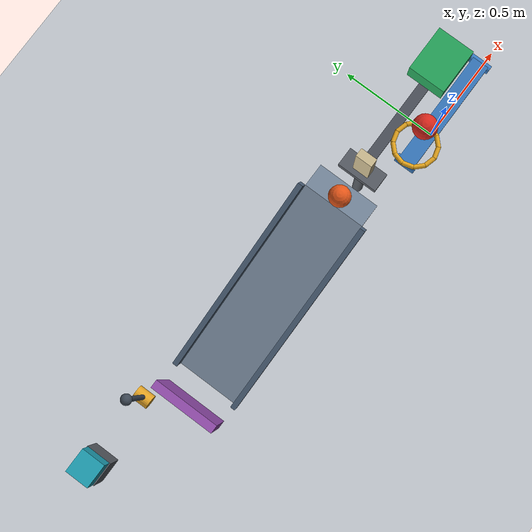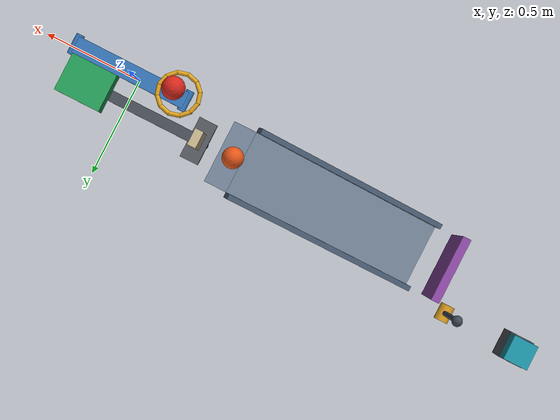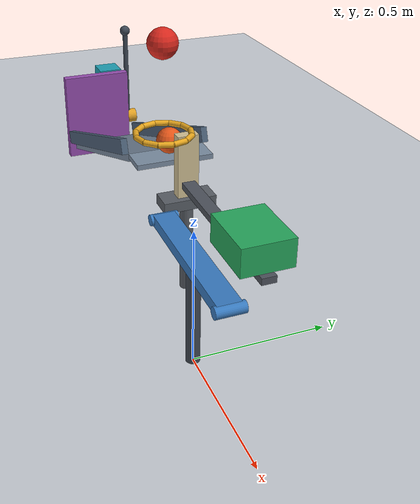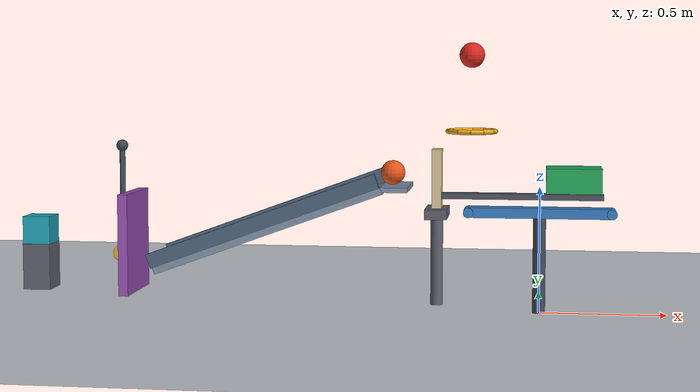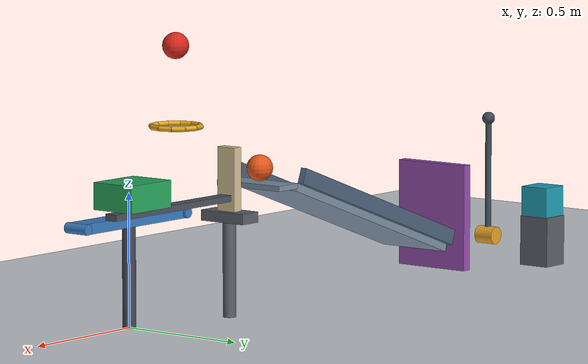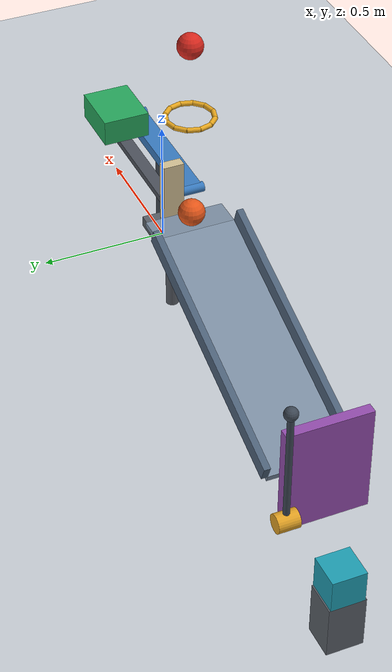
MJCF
<mujoco model="passive_chain_reaction">
  <compiler angle="degree" autolimits="true"/>
  <option timestep="0.002" gravity="0 0 -9.81" integrator="implicitfast" solver="Newton" iterations="100" tolerance="1e-10"/>
  <statistic center="-0.85 0.15 0.50" extent="2.4"/>

  <visual>
    <headlight ambient="0.35 0.35 0.35" diffuse="0.65 0.65 0.65" specular="0.15 0.15 0.15"/>
    <rgba haze="0.85 0.90 0.95 1"/>
  </visual>

  <worldbody>
    <light name="scene_light" pos="-0.5 -2 4" dir="0 0.4 -1" diffuse="0.8 0.8 0.8"/>
    <geom name="floor" type="plane" pos="0 0 0" size="4 3 0.1" friction="0.72 0.005 0.005" condim="6" priority="1" solref="0.006 0.7156" solimp="0.95 0.95 0.001" rgba="0.78 0.80 0.83 1"/>

    <!-- Ring: capsule centerlines form a polygon with a 0.16 m clear inscribed diameter. -->
    <body name="ring1" pos="-0.27 0 0.72">
      <geom name="ring1_segment01" type="capsule" fromto="0.093175 0 0 0.080691 0.046588 0" size="0.01" friction="0.72 0.005 0.005" condim="3" solref="0.006 0.7156" solimp="0.95 0.95 0.001" rgba="0.9 0.65 0.12 1"/>
      <geom name="ring1_segment02" type="capsule" fromto="0.080691 0.046588 0 0.046588 0.080691 0" size="0.01" friction="0.72 0.005 0.005" condim="3" solref="0.006 0.7156" solimp="0.95 0.95 0.001" rgba="0.9 0.65 0.12 1"/>
      <geom name="ring1_segment03" type="capsule" fromto="0.046588 0.080691 0 0 0.093175 0" size="0.01" friction="0.72 0.005 0.005" condim="3" solref="0.006 0.7156" solimp="0.95 0.95 0.001" rgba="0.9 0.65 0.12 1"/>
      <geom name="ring1_segment04" type="capsule" fromto="0 0.093175 0 -0.046588 0.080691 0" size="0.01" friction="0.72 0.005 0.005" condim="3" solref="0.006 0.7156" solimp="0.95 0.95 0.001" rgba="0.9 0.65 0.12 1"/>
      <geom name="ring1_segment05" type="capsule" fromto="-0.046588 0.080691 0 -0.080691 0.046588 0" size="0.01" friction="0.72 0.005 0.005" condim="3" solref="0.006 0.7156" solimp="0.95 0.95 0.001" rgba="0.9 0.65 0.12 1"/>
      <geom name="ring1_segment06" type="capsule" fromto="-0.080691 0.046588 0 -0.093175 0 0" size="0.01" friction="0.72 0.005 0.005" condim="3" solref="0.006 0.7156" solimp="0.95 0.95 0.001" rgba="0.9 0.65 0.12 1"/>
      <geom name="ring1_segment07" type="capsule" fromto="-0.093175 0 0 -0.080691 -0.046588 0" size="0.01" friction="0.72 0.005 0.005" condim="3" solref="0.006 0.7156" solimp="0.95 0.95 0.001" rgba="0.9 0.65 0.12 1"/>
      <geom name="ring1_segment08" type="capsule" fromto="-0.080691 -0.046588 0 -0.046588 -0.080691 0" size="0.01" friction="0.72 0.005 0.005" condim="3" solref="0.006 0.7156" solimp="0.95 0.95 0.001" rgba="0.9 0.65 0.12 1"/>
      <geom name="ring1_segment09" type="capsule" fromto="-0.046588 -0.080691 0 0 -0.093175 0" size="0.01" friction="0.72 0.005 0.005" condim="3" solref="0.006 0.7156" solimp="0.95 0.95 0.001" rgba="0.9 0.65 0.12 1"/>
      <geom name="ring1_segment10" type="capsule" fromto="0 -0.093175 0 0.046588 -0.080691 0" size="0.01" friction="0.72 0.005 0.005" condim="3" solref="0.006 0.7156" solimp="0.95 0.95 0.001" rgba="0.9 0.65 0.12 1"/>
      <geom name="ring1_segment11" type="capsule" fromto="0.046588 -0.080691 0 0.080691 -0.046588 0" size="0.01" friction="0.72 0.005 0.005" condim="3" solref="0.006 0.7156" solimp="0.95 0.95 0.001" rgba="0.9 0.65 0.12 1"/>
      <geom name="ring1_segment12" type="capsule" fromto="0.080691 -0.046588 0 0.093175 0 0" size="0.01" friction="0.72 0.005 0.005" condim="3" solref="0.006 0.7156" solimp="0.95 0.95 0.001" rgba="0.9 0.65 0.12 1"/>
    </body>

    <!-- Ball center starts 0.30 m above the ring plane.
         Initial lever contact occurs with the ball center 0.25 m below that plane. -->
    <body name="ball1" pos="-0.27 0 1.02">
      <freejoint name="ball1_free"/>
      <geom name="ball1_sphere" type="sphere" size="0.05" mass="0.20" friction="0.72 0.005 0.005" condim="3" solref="0.006 0.7156" solimp="0.95 0.95 0.001" rgba="0.85 0.16 0.12 1"/>
    </body>

    <body name="lever1_mount" pos="0 0 0.19">
      <geom name="lever1_mount_post" type="cylinder" size="0.025 0.19" contype="0" conaffinity="0" friction="0.72 0.005 0.005" rgba="0.25 0.28 0.32 1"/>
    </body>

    <!-- Rounded ends retain the specified 0.60 x 0.10 x 0.04 m envelope.
         The cart overlaps only the outer strip of the right-hand end. -->
    <body name="lever1" pos="0 0 0.40">
      <joint name="lever1_hinge" type="hinge" axis="0 -1 0" range="0 45" damping="0.04" margin="0" solreflimit="0.006 0.7156" solimplimit="0.95 0.95 0.001"/>
      <geom name="lever1_beam" type="box" size="0.28 0.04 0.02" mass="0.46" friction="0.72 0.005 0.005" condim="3" solref="0.006 0.7156" solimp="0.95 0.95 0.001" rgba="0.22 0.48 0.75 1"/>
      <geom name="lever1_left_end" type="cylinder" pos="-0.28 0 0" euler="90 0 0" size="0.02 0.05" mass="0.02" friction="0.72 0.005 0.005" condim="3" solref="0.006 0.7156" solimp="0.95 0.95 0.001" rgba="0.22 0.48 0.75 1"/>
      <geom name="lever1_right_end" type="cylinder" pos="0.28 0 0" euler="90 0 0" size="0.02 0.05" mass="0.02" friction="0.72 0.005 0.005" condim="3" solref="0.006 0.7156" solimp="0.95 0.95 0.001" rgba="0.22 0.48 0.75 1"/>
    </body>

    <body name="cart1_guide" pos="-0.075 0.135 0.45">
      <geom name="cart1_guide_rail" type="box" size="0.33 0.025 0.012" contype="0" conaffinity="0" friction="0.72 0.005 0.005" rgba="0.30 0.32 0.36 1"/>
    </body>

    <!-- The initial cart-to-domino surface gap is exactly 0.42 m.
         A further 0.015 m of slide travel permits impact follow-through. -->
    <body name="cart1" pos="0.135 0.135 0.52">
      <joint name="cart1_slide" type="slide" axis="-1 0 0" range="0 0.435" damping="0.20" margin="0" solreflimit="0.006 0.7156" solimplimit="0.95 0.95 0.001"/>
      <geom name="cart1_box" type="box" size="0.11 0.09 0.05" mass="0.50" friction="0.72 0.005 0.005" condim="3" solref="0.006 0.7156" solimp="0.95 0.95 0.001" rgba="0.15 0.65 0.36 1"/>
    </body>

    <body name="domino1_support" pos="-0.415 0.135 0">
      <geom name="domino1_support_post" type="cylinder" pos="0 0 0.18" size="0.025 0.18" friction="0.72 0.005 0.005" condim="3" solref="0.006 0.7156" solimp="0.95 0.95 0.001" rgba="0.35 0.37 0.40 1"/>
      <geom name="domino1_support_top" type="box" pos="0 0 0.38" size="0.045 0.10 0.02" friction="0.72 0.005 0.005" condim="3" solref="0.006 0.7156" solimp="0.95 0.95 0.001" rgba="0.35 0.37 0.40 1"/>
    </body>

    <body name="domino1" pos="-0.415 0.135 0.52">
      <freejoint name="domino1_free"/>
      <geom name="domino1_box" type="box" size="0.02 0.04 0.12" mass="0.25" friction="0.72 0.005 0.005" condim="3" solref="0.006 0.7156" solimp="0.95 0.95 0.001" rgba="0.82 0.75 0.58 1"/>
    </body>

    <!-- The short horizontal high-end landing holds ball2 at rest until struck.
         The inclined deck itself is 1.00 m long, 0.30 m wide, and tilted 20 degrees. -->
    <body name="ramp1" pos="0 0 0">
      <geom name="ramp1_deck" type="box" pos="-1.099716 0.135 0.3069147" euler="0 -20 0" size="0.50 0.15 0.015" friction="0.72 0.005 0.005" condim="3" solref="0.006 0.7156" solimp="0.95 0.95 0.001" rgba="0.48 0.55 0.63 1"/>
      <geom name="ramp1_high_landing" type="box" pos="-0.580 0.135 0.4820201" size="0.055 0.15 0.01" friction="0.72 0.005 0.005" condim="3" solref="0.006 0.7156" solimp="0.95 0.95 0.001" rgba="0.48 0.55 0.63 1"/>
      <geom name="ramp1_left_rail" type="box" pos="-1.1151069 -0.0275 0.3492009" euler="0 -20 0" size="0.50 0.0125 0.03" friction="0.72 0.005 0.005" condim="3" solref="0.006 0.7156" solimp="0.95 0.95 0.001" rgba="0.30 0.38 0.47 1"/>
      <geom name="ramp1_right_rail" type="box" pos="-1.1151069 0.2975 0.3492009" euler="0 -20 0" size="0.50 0.0125 0.03" friction="0.72 0.005 0.005" condim="3" solref="0.006 0.7156" solimp="0.95 0.95 0.001" rgba="0.30 0.38 0.47 1"/>
    </body>

    <!-- Domino and ball2 starting centers are separated by 0.18 m along x. -->
    <body name="ball2" pos="-0.595 0.135 0.5420201">
      <freejoint name="ball2_free"/>
      <geom name="ball2_sphere" type="sphere" size="0.05" mass="0.20" friction="0.72 0.005 0.005" condim="3" solref="0.006 0.7156" solimp="0.95 0.95 0.001" rgba="0.90 0.34 0.10 1"/>
    </body>

    <!-- Ramp low-end top: x=-1.5746926, z=0.15.
         Initial door front face: x=-1.6746926, giving the 0.10 m gap.
         The bottom hinge lets the ball trigger a gravity-powered 70-degree swing. -->
    <body name="door1" pos="-1.6946926 0.135 0.03">
      <joint name="door1_hinge" type="hinge" axis="0 -1 0" range="0 70" damping="0.04" margin="0" solreflimit="0.006 0.7156" solimplimit="0.95 0.95 0.001"/>
      <geom name="door1_panel" type="box" pos="0 0 0.21" size="0.02 0.16 0.21" mass="0.45" friction="0.72 0.005 0.005" condim="3" solref="0.006 0.7156" solimp="0.95 0.95 0.001" rgba="0.58 0.30 0.68 1"/>
    </body>

    <!-- The shaft clears the side of the door; its transverse striker overlaps the panel.
         Total pendulum mass is 0.35 kg and pivot-to-lowest-point length is 0.50 m. -->
    <body name="pendulum1" pos="-1.7946926 0.325 0.63">
      <joint name="pendulum1_hinge" type="hinge" axis="0 1 0" range="0 38" damping="0.04" margin="0" solreflimit="0.006 0.7156" solimplimit="0.95 0.95 0.001"/>
      <geom name="pendulum1_hub" type="sphere" size="0.025" mass="0.23" friction="0.72 0.005 0.005" condim="3" solref="0.006 0.7156" solimp="0.95 0.95 0.001" rgba="0.24 0.28 0.33 1"/>
      <geom name="pendulum1_shaft" type="capsule" fromto="0 0 -0.012 0 0 -0.488" size="0.012" mass="0.10" friction="0.72 0.005 0.005" condim="3" solref="0.006 0.7156" solimp="0.95 0.95 0.001" rgba="0.24 0.28 0.33 1"/>
      <geom name="pendulum1_striker" type="cylinder" pos="0 0 -0.465" euler="90 0 0" size="0.035 0.04" mass="0.02" friction="0.72 0.005 0.005" condim="3" solref="0.006 0.7156" solimp="0.95 0.95 0.001" rgba="0.88 0.63 0.14 1"/>
    </body>

    <!-- Contact begins close to 37 degrees, leaving one degree of follow-through. -->
    <body name="block1_support" pos="-2.1695366 0.325 0.10">
      <geom name="block1_support_box" type="box" size="0.06 0.065 0.10" friction="0.72 0.005 0.005" condim="3" solref="0.006 0.7156" solimp="0.95 0.95 0.001" rgba="0.35 0.37 0.40 1"/>
    </body>

    <body name="block1" pos="-2.1695366 0.325 0.26">
      <freejoint name="block1_free"/>
      <geom name="block1_cube" type="box" size="0.06 0.06 0.06" mass="0.35" friction="0.72 0.005 0.005" condim="3" solref="0.006 0.7156" solimp="0.95 0.95 0.001" rgba="0.12 0.62 0.70 1"/>
    </body>
  </worldbody>

  <!-- Omitted keyframe state arrays use the model's initial positions and zero velocities. -->
  <keyframe>
    <key name="start" time="0"/>
  </keyframe>
</mujoco>
